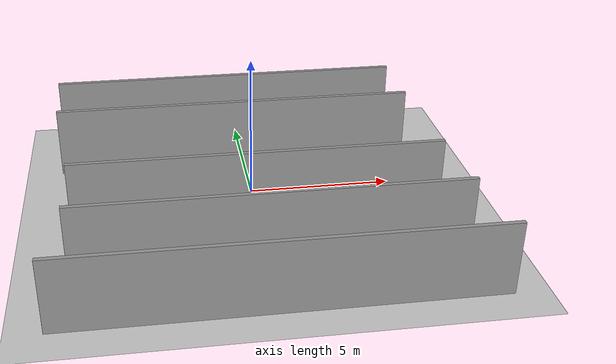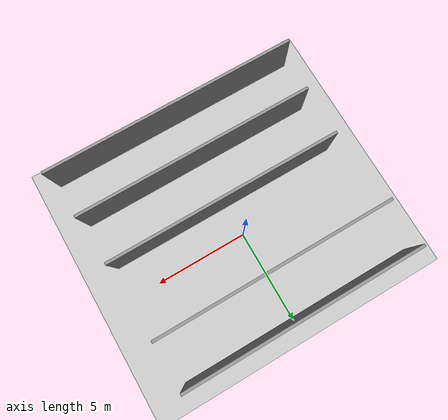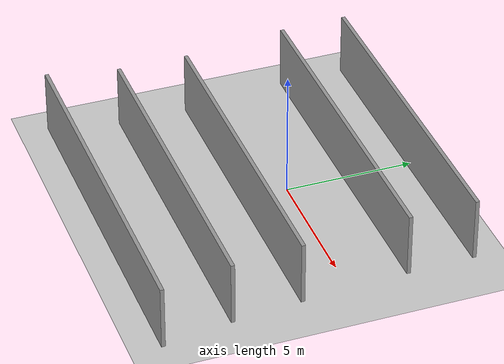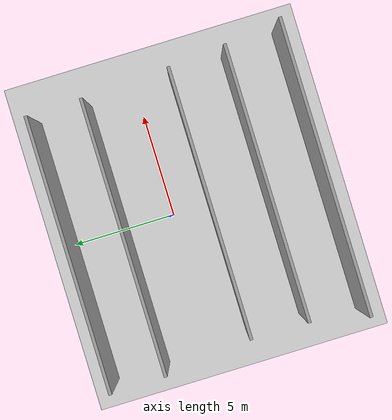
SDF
<sdf version="1.7">
 <world name="default">
  <light name="sun" type="directional">
   <pose>0 0 10 0 -0 0</pose>
   <diffuse>0.8 0.8 0.8 1</diffuse>
   <specular>0.2 0.2 0.2 1</specular>
   <attenuation>
    <range>1000</range>
    <constant>0.9</constant>
    <linear>0.01</linear>
    <quadratic>0.001</quadratic>
   </attenuation>
   <direction>-0.5 0.1 -0.9</direction>
   <spot><inner_angle>0</inner_angle><outer_angle>0</outer_angle><falloff>0</falloff></spot>
  </light>
  <model name="ground_plane">
   <static>1</static>
   <link name="link">
    <collision name="collision">
     <geometry><plane><normal>0 0 1</normal><size>100 100</size></plane></geometry>
     <surface>
      <contact><collide_bitmask>65535</collide_bitmask></contact>
      <friction><ode><mu>100</mu><mu2>50</mu2></ode></friction>
     </surface>
    </collision>
    <visual name="visual">
     <cast_shadows>0</cast_shadows>
     <geometry><plane><normal>0 0 1</normal><size>100 100</size></plane></geometry>
     <material>
      <script><uri>file://media/materials/scripts/gazebo.material</uri><name>Gazebo/Grey</name></script>
     </material>
    </visual>
   </link>
  </model>
  <gravity>0 0 -9.8</gravity>
  <magnetic_field>6e-06 2.3e-05 -4.2e-05</magnetic_field>
  <atmosphere type="adiabatic"/>
  <physics type="ode">
   <max_step_size>0.001</max_step_size>
   <real_time_factor>1</real_time_factor>
   <real_time_update_rate>1000</real_time_update_rate>
  </physics>
  <scene><ambient>0.4 0.4 0.4 1</ambient><background>0.7 0.7 0.7 1</background><shadows>1</shadows></scene>
  <spherical_coordinates>
   <surface_model>EARTH_WGS84</surface_model>
   <latitude_deg>0</latitude_deg>
   <longitude_deg>0</longitude_deg>
   <elevation>0</elevation>
   <heading_deg>0</heading_deg>
  </spherical_coordinates>
  <model name="myworld">
   <pose>0.076587 -1.14077 0 0 -0 0</pose>
   <link name="Wall_12">
    <collision name="Wall_12_Collision">
     <geometry><box><size>12.75 0.15 2.5</size></box></geometry>
     <pose>0 0 1.25 0 -0 0</pose>
    </collision>
    <visual name="Wall_12_Visual">
     <pose>0 0 1.25 0 -0 0</pose>
     <geometry><box><size>12.75 0.15 2.5</size></box></geometry>
     <material>
      <script><uri>file://media/materials/scripts/gazebo.material</uri><name>Gazebo/Grey</name></script>
      <ambient>1 1 1 1</ambient>
     </material>
     <meta><layer>0</layer></meta>
    </visual>
    <pose>-0.032569 -0.659483 0 0 -0 0</pose>
   </link>
   <link name="Wall_14">
    <collision name="Wall_14_Collision">
     <geometry><box><size>13 0.15 2.5</size></box></geometry>
     <pose>0 0 1.25 0 -0 0</pose>
    </collision>
    <visual name="Wall_14_Visual">
     <pose>0 0 1.25 0 -0 0</pose>
     <geometry><box><size>13 0.15 2.5</size></box></geometry>
     <material>
      <script><uri>file://media/materials/scripts/gazebo.material</uri><name>Gazebo/Grey</name></script>
      <ambient>1 1 1 1</ambient>
     </material>
     <meta><layer>0</layer></meta>
    </visual>
    <pose>0.073983 -3.36203 0 0 -0 0</pose>
   </link>
   <link name="Wall_17">
    <collision name="Wall_17_Collision">
     <geometry><box><size>14 0.15 2.5</size></box></geometry>
     <pose>0 0 1.25 0 -0 0</pose>
    </collision>
    <visual name="Wall_17_Visual">
     <pose>0 0 1.25 0 -0 0</pose>
     <geometry><box><size>14 0.15 2.5</size></box></geometry>
     <material>
      <script><uri>file://media/materials/scripts/gazebo.material</uri><name>Gazebo/Grey</name></script>
      <ambient>1 1 1 1</ambient>
     </material>
     <meta><layer>0</layer></meta>
    </visual>
    <pose>-0 -6.07152 0 0 -0 0</pose>
   </link>
   <link name="Wall_6">
    <collision name="Wall_6_Collision">
     <geometry><box><size>13 0.15 2.5</size></box></geometry>
     <pose>0 0 1.25 0 -0 0</pose>
    </collision>
    <visual name="Wall_6_Visual">
     <pose>0 0 1.25 0 -0 0</pose>
     <geometry><box><size>13 0.15 2.5</size></box></geometry>
     <material>
      <script><uri>file://media/materials/scripts/gazebo.material</uri><name>Gazebo/Grey</name></script>
      <ambient>1 1 1 1</ambient>
     </material>
     <meta><layer>0</layer></meta>
    </visual>
    <pose>-0.416442 6.07152 0 0 -0 0</pose>
   </link>
   <link name="Wall_9">
    <collision name="Wall_9_Collision">
     <geometry><box><size>13 0.15 2.5</size></box></geometry>
     <pose>0 0 1.25 0 -0 0</pose>
    </collision>
    <visual name="Wall_9_Visual">
     <pose>0 0 1.25 0 -0 0</pose>
     <geometry><box><size>13 0.15 2.5</size></box></geometry>
     <material>
      <script><uri>file://media/materials/scripts/gazebo.material</uri><name>Gazebo/Grey</name></script>
      <ambient>1 1 1 1</ambient>
     </material>
     <meta><layer>0</layer></meta>
    </visual>
    <pose>-0.370181 3.48089 0 0 -0 0</pose>
   </link>
   <static>1</static>
  </model>
 </world>
</sdf>
